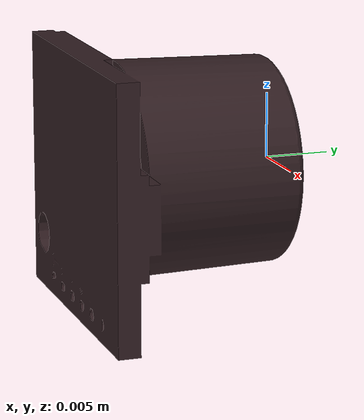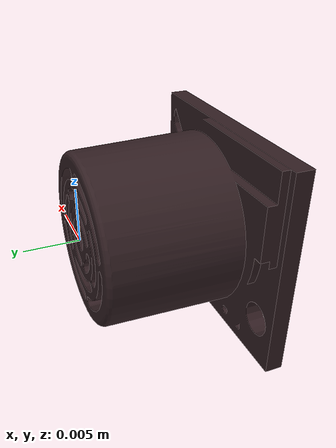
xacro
<robot name="Right_URF_link"><link name="Right_URF_link">
    <inertial>
      <origin rpy="0 0 0" xyz="1.6494E-05 0.012085 -1.486E-07" />
      <mass value="0.0020317" />
      <inertia ixx="8.4324E-08" ixy="1.1443E-10" ixz="1.6171E-09" iyy="9.8652E-08" iyz="-1.0309E-12" izz="7.8496E-08" />
    </inertial>
    <visual>
      <origin rpy="0 0 1.57" xyz="0 0 0" />
      <geometry>
        <mesh filename="package://robotican_description/lizi/meshes/Right_URF_Link.STL" />
      </geometry>
      <material name="">
        <color rgba="0.19216 0.11961 0.13333 1" />
      </material>
    </visual>
    <collision>
      <origin rpy="0 0 0" xyz="0 0 0" />
      <geometry>
        <mesh filename="package://robotican_description/lizi/meshes/Right_URF_Link.STL" />
      </geometry>
    </collision>
  </link>
  </robot>
